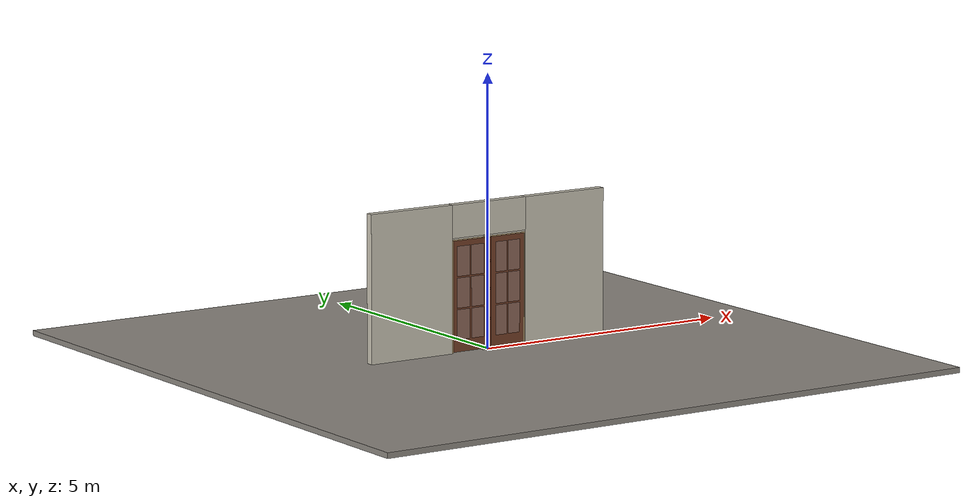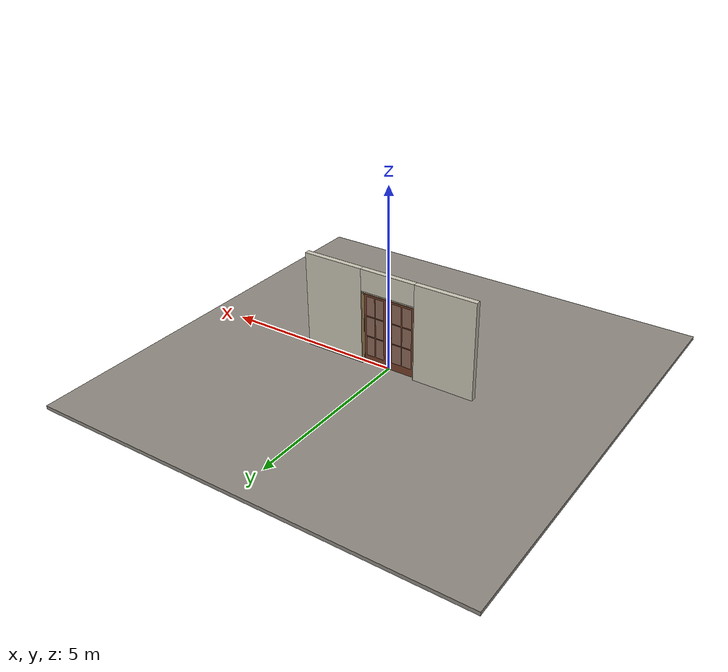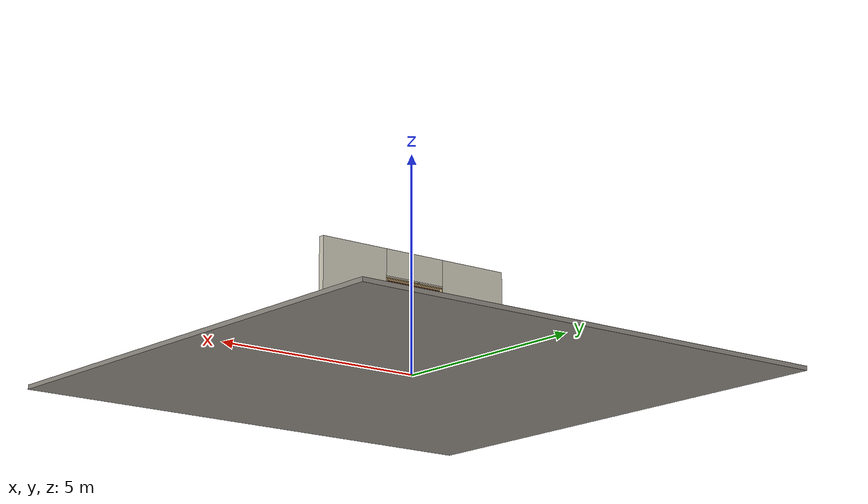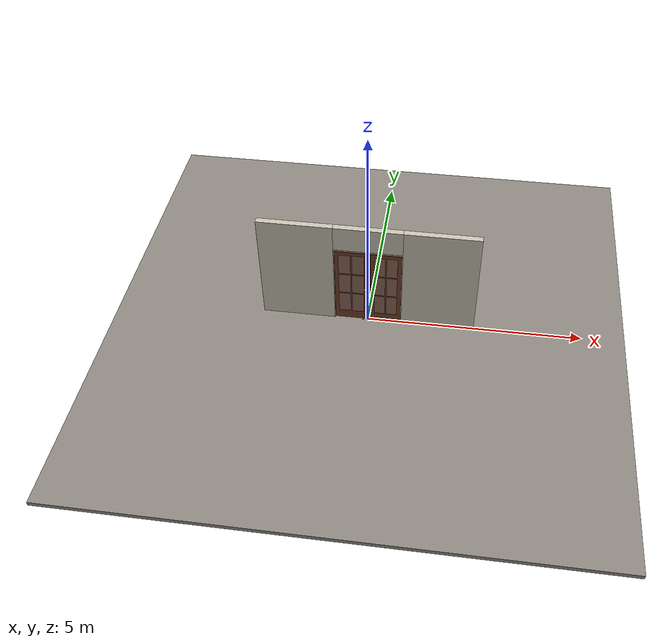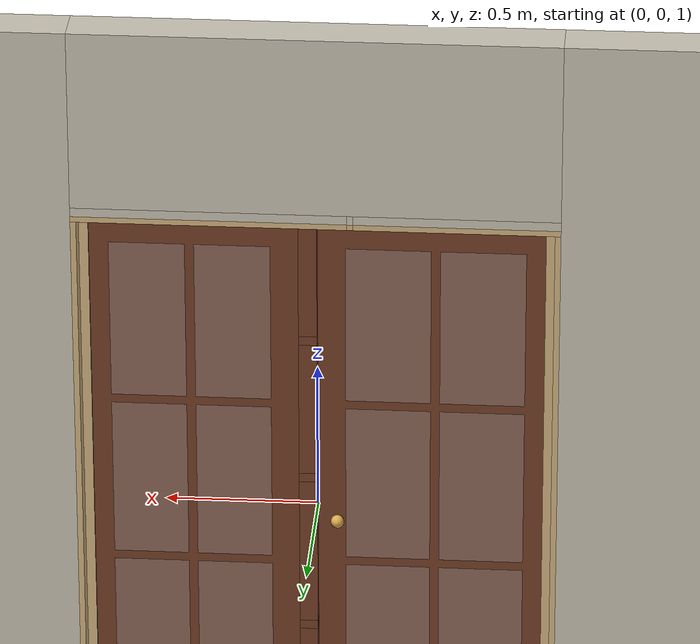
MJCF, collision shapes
<?xml version="1.0" ?>
<mujoco model="db0341_swing_double_minimal">
  <compiler angle="radian" meshdir="../../hardware" texturedir="../../textures" autolimits="true" inertiafromgeom="false"/>
  <option timestep="0.002" integrator="implicitfast" cone="elliptic" impratio="10" noslip_iterations="3">
    <flag multiccd="enable"/>
  </option>
  <size memory="16M"/>
  <default>
    <geom condim="4" solref="0.005 1" solimp="0.95 0.99 0.001"/>
    <joint solreflimit="0.005 1" solimplimit="0.95 0.99 0.001"/>
    <tendon solreflimit="0.005 1"/>
    <equality solref="0.002 1"/>
  </default>
  <visual>
    <headlight ambient="0.4 0.4 0.4" diffuse="0.7 0.7 0.7" specular="0.2 0.2 0.2"/>
    <quality shadowsize="4096"/>
    <map znear="0.01" zfar="60"/>
  </visual>
  <asset>
    <mesh name="knob_9525440cc3" file="knob_9525440cc3.obj"/>
    <material name="mat_floor" rgba="0.55 0.53 0.5 1" specular="0.2" shininess="0.15" reflectance="0"/>
    <material name="mat_wall" rgba="0.78 0.76 0.7 1" specular="0.2" shininess="0.1" reflectance="0"/>
    <material name="mat_leaf_a" rgba="0.45 0.24 0.15 1" specular="0.2" shininess="0.55" reflectance="0"/>
    <material name="mat_glass" rgba="0.85 0.92 0.95 0.25" specular="0.2" shininess="0.95" reflectance="0.1"/>
    <material name="mat_hinge" rgba="0.65 0.66 0.68 1" specular="0.74" shininess="0.5" reflectance="0.36"/>
    <material name="mat_op_brass" rgba="0.85 0.66 0.3 1" specular="0.8" shininess="0.75" reflectance="0.4"/>
    <material name="mat_trim" rgba="0.85 0.66 0.3 1" specular="0.8" shininess="0.75" reflectance="0.4"/>
    <material name="mat_deadbolt" rgba="0.85 0.66 0.3 1" specular="0.8" shininess="0.75" reflectance="0.4"/>
    <material name="mat_leaf_b" rgba="0.45 0.24 0.15 1" specular="0.2" shininess="0.55" reflectance="0"/>
    <material name="mat_frame" rgba="0.82 0.7 0.5 1" specular="0.2" shininess="0.45" reflectance="0"/>
    <material name="mat_astragal" rgba="0.8 0.81 0.83 1" specular="0.8" shininess="0.6" reflectance="0.4"/>
    <texture name="skybox" type="skybox" builtin="gradient" rgb1="0.6 0.7 0.85" rgb2="0.9 0.92 0.95" width="256" height="256"/>
  </asset>
  <worldbody>
    <light name="sun" pos="1.5 -2.5 4" dir="-0.3 0.5 -0.8" directional="true" diffuse="0.8 0.8 0.8" specular="0.3 0.3 0.3" castshadow="true"/>
    <light name="fill" pos="-1.5 2.5 3" dir="0.3 -0.5 -0.7" directional="true" diffuse="0.35 0.35 0.4" castshadow="false"/>
    <camera name="robot_view" pos="0 -2.511687 1.734312" xyaxes="1 0 0 0 0.26963 0.962964" fovy="52"/>
    <camera name="far_view" pos="0 2.572687 1.734312" xyaxes="-1 0 0 0 -0.26963 0.962964" fovy="52"/>
    <camera name="iso" pos="-1.932062 -2.104938 2.141063" xyaxes="0.741536 -0.670913 0 0.242917 0.268487 0.932151" fovy="46"/>
    <camera name="detail_handle" pos="0.1135 -0.857 1.245" xyaxes="0.97561 0.219512 0 -0.070934 0.315262 0.94635" fovy="38"/>
    <geom name="floor" type="box" size="6 6 0.05" pos="0 0 -0.05" material="mat_floor" group="0" contype="1" conaffinity="1" friction="0.8 0.005 0.0001" density="2400"/>
    <geom name="wall_left" type="box" size="0.85725 0.0725 1.35" pos="-1.64275 0.0305 1.35" material="mat_wall" group="0" contype="1" conaffinity="1" friction="0.6 0.005 0.0001" density="800"/>
    <geom name="wall_right" type="box" size="0.85725 0.0725 1.35" pos="1.64275 0.0305 1.35" material="mat_wall" group="0" contype="1" conaffinity="1" friction="0.6 0.005 0.0001" density="800"/>
    <geom name="wall_header" type="box" size="0.7855 0.0725 0.303" pos="0 0.0305 2.397" material="mat_wall" group="0" contype="1" conaffinity="1" friction="0.6 0.005 0.0001" density="800"/>
    <geom name="leaf_a_cremone_floor_strike_plate" type="box" size="0.023 0.023 0.00075" pos="-0.1115 -0.031 0.00075" material="mat_op_brass" group="0" contype="1" conaffinity="1" friction="0.6 0.005 0.0001" density="7850"/>
    <geom name="leaf_a_cremone_floor_strike_p" type="box" size="0.019 0.004 0.00575" pos="-0.1115 -0.019 0.00725" material="mat_op_brass" group="0" contype="1" conaffinity="1" friction="0.6 0.005 0.0001" density="7850"/>
    <geom name="leaf_a_cremone_floor_strike_n" type="box" size="0.019 0.004 0.00575" pos="-0.1115 -0.043 0.00725" material="mat_op_brass" group="0" contype="1" conaffinity="1" friction="0.6 0.005 0.0001" density="7850"/>
    <geom name="leaf_a_cremone_floor_strike_e" type="box" size="0.004 0.019 0.00575" pos="-0.0995 -0.031 0.00725" material="mat_op_brass" group="0" contype="1" conaffinity="1" friction="0.6 0.005 0.0001" density="7850"/>
    <geom name="jamb_l" type="box" size="0.0095 0.0725 1.0225" pos="-0.776 0.0305 1.0225" material="mat_frame" group="0" contype="1" conaffinity="1" friction="0.6 0.005 0.0001" density="300"/>
    <geom name="jamb_r" type="box" size="0.0095 0.0725 1.0225" pos="0.776 0.0305 1.0225" material="mat_frame" group="0" contype="1" conaffinity="1" friction="0.6 0.005 0.0001" density="300"/>
    <geom name="jamb_head_pwall_-111_n" type="box" size="0.01 0.00175 0.0095" pos="-0.1115 -0.04025 2.0545" material="mat_frame" group="0" contype="1" conaffinity="1" friction="0.6 0.005 0.0001" density="300"/>
    <geom name="jamb_head_pwall_-111_p" type="box" size="0.01 0.06325 0.0095" pos="-0.1115 0.03975 2.0545" material="mat_frame" group="0" contype="1" conaffinity="1" friction="0.6 0.005 0.0001" density="300"/>
    <geom name="jamb_head_0" type="box" size="0.332 0.0725 0.0095" pos="-0.4535 0.0305 2.0545" material="mat_frame" group="0" contype="1" conaffinity="1" friction="0.6 0.005 0.0001" density="300"/>
    <geom name="jamb_head_1" type="box" size="0.4435 0.0725 0.0095" pos="0.342 0.0305 2.0545" material="mat_frame" group="0" contype="1" conaffinity="1" friction="0.6 0.005 0.0001" density="300"/>
    <geom name="head_stud_pwall_-111_n" type="box" size="0.01 0.00175 0.015" pos="-0.1115 -0.04025 2.079" material="mat_wall" group="0" contype="1" conaffinity="1" friction="0.6 0.005 0.0001" density="500"/>
    <geom name="head_stud_pwall_-111_p" type="box" size="0.01 0.06325 0.015" pos="-0.1115 0.03975 2.079" material="mat_wall" group="0" contype="1" conaffinity="1" friction="0.6 0.005 0.0001" density="500"/>
    <geom name="head_stud_pback_-111" type="box" size="0.01 0.0075 0.0115" pos="-0.1115 -0.031 2.0825" material="mat_wall" group="0" contype="1" conaffinity="1" friction="0.6 0.005 0.0001" density="500"/>
    <geom name="head_stud_0" type="box" size="0.332 0.0725 0.015" pos="-0.4535 0.0305 2.079" material="mat_wall" group="0" contype="1" conaffinity="1" friction="0.6 0.005 0.0001" density="500"/>
    <geom name="head_stud_1" type="box" size="0.4435 0.0725 0.015" pos="0.342 0.0305 2.079" material="mat_wall" group="0" contype="1" conaffinity="1" friction="0.6 0.005 0.0001" density="500"/>
    <geom name="stop_l" type="box" size="0.015 0.006 1.0225" pos="-0.7515 0.0285 1.0225" material="mat_frame" group="0" contype="1" conaffinity="1" friction="0.6 0.005 0.0001" density="300"/>
    <geom name="stop_r" type="box" size="0.015 0.006 1.0225" pos="0.7515 0.0285 1.0225" material="mat_frame" group="0" contype="1" conaffinity="1" friction="0.6 0.005 0.0001" density="300"/>
    <geom name="stop_head" type="box" size="0.7665 0.006 0.015" pos="0 0.0285 2.03" material="mat_frame" group="0" contype="1" conaffinity="1" friction="0.6 0.005 0.0001" density="300"/>
    <site name="approach_point" pos="0 -1.5 0" quat="1 0 0 0" size="0.05" rgba="0.2 0.9 0.2 0.5" group="4"/>
    <site name="goal_point" pos="0 1.5 0" quat="1 0 0 0" size="0.05" rgba="0.2 0.9 0.2 0.5" group="4"/>
    <site name="door_plane_center" pos="0 0 1.0225" quat="1 0 0 0" size="0.02" rgba="0.2 0.9 0.2 0.5" group="4"/>
    <site name="approach_point_2" pos="0 -1.5 0" quat="1 0 0 0" size="0.05" rgba="0.2 0.9 0.2 0.5" group="4"/>
    <site name="goal_point_2" pos="0 1.5 0" quat="1 0 0 0" size="0.05" rgba="0.2 0.9 0.2 0.5" group="4"/>
    <site name="door_plane_center_2" pos="0 0 1.0225" quat="1 0 0 0" size="0.02" rgba="0.2 0.9 0.2 0.5" group="4"/>
    <site name="approach_point_3" pos="0 -1.5 0" quat="1 0 0 0" size="0.05" rgba="0.2 0.9 0.2 0.5" group="4"/>
    <site name="goal_point_3" pos="0 1.5 0" quat="1 0 0 0" size="0.05" rgba="0.2 0.9 0.2 0.5" group="4"/>
    <site name="door_plane_center_3" pos="0 0 1.0225" quat="1 0 0 0" size="0.02" rgba="0.2 0.9 0.2 0.5" group="4"/>
    <body name="leaf_a" pos="-0.7665 0 0">
      <inertial pos="0.384 0 1.028651" mass="32.648345" quat="-0.5 0.5 0.5 0.5" diaginertia="1.583513624 11.154431492 12.727408647"/>
      <joint name="leaf_a_hinge" type="hinge" axis="0 0 -1" pos="0.003 -0.029 0" limited="true" range="0 1.570796" solreflimit="0.02 1" damping="0.173726" frictionloss="0.993105" armature="0.02"/>
      <geom name="leaf_a_slab" type="box" size="0.381 0.022 1.0125" pos="0.384 0 1.0285" material="mat_leaf_a" group="0" contype="1" conaffinity="1" friction="0.35 0.005 0.0001" density="1"/>
      <geom name="leaf_a_glass_0" type="box" size="0.138 0.0228 0.2735" pos="0.231 0 0.51225" material="mat_glass" group="1" contype="0" conaffinity="0" density="1"/>
      <geom name="leaf_a_glass_1" type="box" size="0.138 0.0228 0.2735" pos="0.537 0 0.51225" material="mat_glass" group="1" contype="0" conaffinity="0" density="1"/>
      <geom name="leaf_a_glass_2" type="box" size="0.138 0.0228 0.2735" pos="0.231 0 1.08925" material="mat_glass" group="1" contype="0" conaffinity="0" density="1"/>
      <geom name="leaf_a_glass_3" type="box" size="0.138 0.0228 0.2735" pos="0.537 0 1.08925" material="mat_glass" group="1" contype="0" conaffinity="0" density="1"/>
      <geom name="leaf_a_glass_4" type="box" size="0.138 0.0228 0.2735" pos="0.231 0 1.66625" material="mat_glass" group="1" contype="0" conaffinity="0" density="1"/>
      <geom name="leaf_a_glass_5" type="box" size="0.138 0.0228 0.2735" pos="0.537 0 1.66625" material="mat_glass" group="1" contype="0" conaffinity="0" density="1"/>
      <site name="leaf_a_edge_mid" pos="0.765 0 1.0125" quat="1 0 0 0" size="0.02" rgba="0.2 0.9 0.2 0.5" group="4"/>
      <body name="leaf_a_handle" pos="0.7 0 0.965">
        <inertial pos="0 0 0" mass="0.679046" quat="-0.5 0.5 -0.5 0.5" diaginertia="0.000140287 0.002046641 0.002046641"/>
        <joint name="leaf_a_handle_hinge" type="hinge" axis="0 -1 0" limited="true" range="0 0.03" damping="0.5" frictionloss="0.4" armature="0.01"/>
        <geom name="leaf_a_handle_cremone_knob_n" type="mesh" mesh="knob_9525440cc3" pos="0 -0.022 0" quat="0.707107 0.707107 0 0" material="mat_op_brass" group="1" contype="0" conaffinity="0" density="3000"/>
        <geom name="leaf_a_handle_cremone_col_n" type="sphere" size="0.022" pos="0 -0.057 0" material="mat_op_brass" group="0" contype="1" conaffinity="1" friction="0.6 0.005 0.0001" density="3000"/>
        <geom name="leaf_a_handle_cremone_knob_p" type="mesh" mesh="knob_9525440cc3" pos="0 0.022 0" quat="-0.707107 0.707107 0 0" material="mat_op_brass" group="1" contype="0" conaffinity="0" density="3000"/>
        <geom name="leaf_a_handle_cremone_col_p" type="sphere" size="0.022" pos="0 0.057 0" material="mat_op_brass" group="0" contype="1" conaffinity="1" friction="0.6 0.005 0.0001" density="3000"/>
        <site name="leaf_a_handle_grip_n" pos="0 -0.057 0" quat="1 0 0 0" size="0.012" rgba="0.2 0.9 0.2 0.5" group="4"/>
        <site name="leaf_a_handle_grip_p" pos="0 0.057 0" quat="1 0 0 0" size="0.012" rgba="0.2 0.9 0.2 0.5" group="4"/>
      </body>
    </body>
    <body name="leaf_b" pos="0.7665 0 0">
      <inertial pos="-0.354122 0 1.025135" mass="31.691766" quat="0.5 -0.5 -0.5 -0.5" diaginertia="1.306461224 10.903337695 12.19957134"/>
      <joint name="leaf_b_hinge" type="hinge" axis="0 0 1" pos="-0.003 -0.029 0" limited="true" range="0 0.001" solreflimit="0.02 1" damping="0.173726" frictionloss="0.993105" armature="0.02"/>
      <geom name="leaf_b_edge_555_wall_n" type="box" size="0.03 0.00625 0.0155" pos="-0.735 0.01575 0.555" material="mat_leaf_b" group="0" contype="1" conaffinity="1" friction="0.6 0.005 0.0001" density="1"/>
      <geom name="leaf_b_edge_555_wall_p" type="box" size="0.03 0.00625 0.0155" pos="-0.735 -0.01575 0.555" material="mat_leaf_b" group="0" contype="1" conaffinity="1" friction="0.6 0.005 0.0001" density="1"/>
      <geom name="leaf_b_edge_555_back" type="box" size="0.018 0.0095 0.0155" pos="-0.723 0 0.555" material="mat_leaf_b" group="0" contype="1" conaffinity="1" friction="0.6 0.005 0.0001" density="1"/>
      <geom name="leaf_b_edge_1105_wall_n" type="box" size="0.03 0.00625 0.0155" pos="-0.735 0.01575 1.105" material="mat_leaf_b" group="0" contype="1" conaffinity="1" friction="0.6 0.005 0.0001" density="1"/>
      <geom name="leaf_b_edge_1105_wall_p" type="box" size="0.03 0.00625 0.0155" pos="-0.735 -0.01575 1.105" material="mat_leaf_b" group="0" contype="1" conaffinity="1" friction="0.6 0.005 0.0001" density="1"/>
      <geom name="leaf_b_edge_1105_back" type="box" size="0.018 0.0095 0.0155" pos="-0.723 0 1.105" material="mat_leaf_b" group="0" contype="1" conaffinity="1" friction="0.6 0.005 0.0001" density="1"/>
      <geom name="leaf_b_edge_1605_wall_n" type="box" size="0.03 0.00625 0.0155" pos="-0.735 0.01575 1.605" material="mat_leaf_b" group="0" contype="1" conaffinity="1" friction="0.6 0.005 0.0001" density="1"/>
      <geom name="leaf_b_edge_1605_wall_p" type="box" size="0.03 0.00625 0.0155" pos="-0.735 -0.01575 1.605" material="mat_leaf_b" group="0" contype="1" conaffinity="1" friction="0.6 0.005 0.0001" density="1"/>
      <geom name="leaf_b_edge_1605_back" type="box" size="0.018 0.0095 0.0155" pos="-0.723 0 1.605" material="mat_leaf_b" group="0" contype="1" conaffinity="1" friction="0.6 0.005 0.0001" density="1"/>
      <geom name="leaf_b_edge_seg_0" type="box" size="0.03 0.022 0.26525" pos="-0.735 0 0.27425" material="mat_leaf_b" group="0" contype="1" conaffinity="1" friction="0.6 0.005 0.0001" density="1"/>
      <geom name="leaf_b_edge_seg_1" type="box" size="0.03 0.022 0.2595" pos="-0.735 0 0.83" material="mat_leaf_b" group="0" contype="1" conaffinity="1" friction="0.6 0.005 0.0001" density="1"/>
      <geom name="leaf_b_edge_seg_2" type="box" size="0.03 0.022 0.2345" pos="-0.735 0 1.355" material="mat_leaf_b" group="0" contype="1" conaffinity="1" friction="0.6 0.005 0.0001" density="1"/>
      <geom name="leaf_b_edge_seg_3" type="box" size="0.03 0.022 0.21025" pos="-0.735 0 1.83075" material="mat_leaf_b" group="0" contype="1" conaffinity="1" friction="0.6 0.005 0.0001" density="1"/>
      <geom name="leaf_b_slab" type="box" size="0.351 0.022 1.016" pos="-0.354 0 1.025" material="mat_leaf_b" group="0" contype="1" conaffinity="1" friction="0.35 0.005 0.0001" density="1"/>
      <geom name="leaf_b_glass_0" type="box" size="0.123 0.0228 0.27448" pos="-0.216 0 0.507" material="mat_glass" group="1" contype="0" conaffinity="0" density="1"/>
      <geom name="leaf_b_glass_1" type="box" size="0.123 0.0228 0.27448" pos="-0.492 0 0.507" material="mat_glass" group="1" contype="0" conaffinity="0" density="1"/>
      <geom name="leaf_b_glass_2" type="box" size="0.123 0.0228 0.27448" pos="-0.216 0 1.08596" material="mat_glass" group="1" contype="0" conaffinity="0" density="1"/>
      <geom name="leaf_b_glass_3" type="box" size="0.123 0.0228 0.27448" pos="-0.492 0 1.08596" material="mat_glass" group="1" contype="0" conaffinity="0" density="1"/>
      <geom name="leaf_b_glass_4" type="box" size="0.123 0.0228 0.27448" pos="-0.216 0 1.66492" material="mat_glass" group="1" contype="0" conaffinity="0" density="1"/>
      <geom name="leaf_b_glass_5" type="box" size="0.123 0.0228 0.27448" pos="-0.492 0 1.66492" material="mat_glass" group="1" contype="0" conaffinity="0" density="1"/>
      <site name="leaf_b_edge_mid" pos="-0.765 0 1.016" quat="1 0 0 0" size="0.02" rgba="0.2 0.9 0.2 0.5" group="4"/>
    </body>
  </worldbody>
  <sensor>
    <jointpos name="leaf_a_hinge_pos" joint="leaf_a_hinge"/>
    <jointvel name="leaf_a_hinge_vel" joint="leaf_a_hinge"/>
    <jointpos name="leaf_a_handle_hinge_pos" joint="leaf_a_handle_hinge"/>
    <jointvel name="leaf_a_handle_hinge_vel" joint="leaf_a_handle_hinge"/>
    <jointpos name="leaf_b_hinge_pos" joint="leaf_b_hinge"/>
    <jointvel name="leaf_b_hinge_vel" joint="leaf_b_hinge"/>
  </sensor>
</mujoco>
